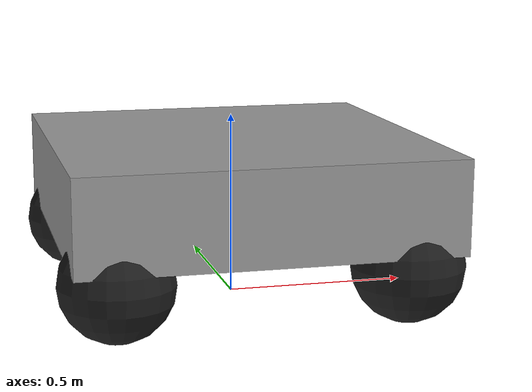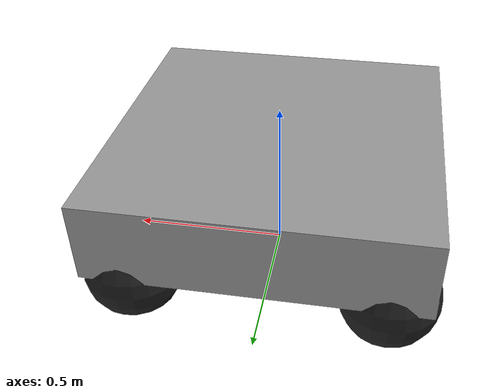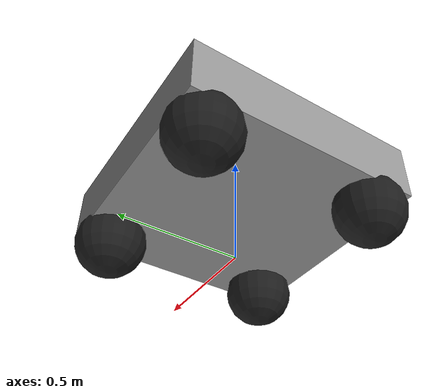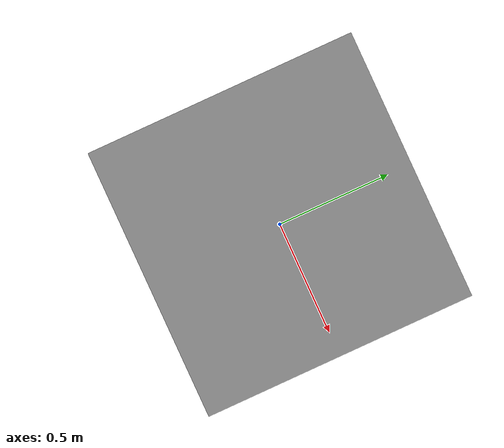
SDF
<?xml version='1.0' encoding='utf-8'?>
<sdf version="1.9">
  <model name="robot" canonical_link="base_link">
    <pose>0 0 0.32 0 0 0</pose>
    <link name="base_link">
      <gravity>false</gravity>
      <inertial>
        <mass>5</mass>
        <inertia>
          <ixx>0.442708</ixx>
          <iyy>0.442708</iyy>
          <izz>0.833333</izz>
        </inertia>
      </inertial>
      <collision name="body_collision">
        <geometry>
          <box>
            <size>1.0 1.0 0.25</size>
          </box>
        </geometry>
      </collision>
      <visual name="body_visual">
        <geometry>
          <box>
            <size>1.0 1.0 0.25</size>
          </box>
        </geometry>
        <material>
          <ambient>0.45 0.45 0.45 1</ambient>
          <diffuse>0.60 0.60 0.60 1</diffuse>
          <specular>0.25 0.25 0.25 1</specular>
        </material>
      </visual>
      <collision name="support_0_collision">
        <pose>0.38 0.38 -0.17 0 0 0</pose>
        <geometry>
          <sphere>
            <radius>0.15</radius>
          </sphere>
        </geometry>
        <surface>
          <friction>
            <ode>
              <mu>0.02</mu>
              <mu2>0.02</mu2>
            </ode>
          </friction>
        </surface>
      </collision>
      <visual name="support_0_visual">
        <pose>0.38 0.38 -0.17 0 0 0</pose>
        <geometry>
          <sphere>
            <radius>0.15</radius>
          </sphere>
        </geometry>
        <material>
          <ambient>0.12 0.12 0.12 1</ambient>
          <diffuse>0.12 0.12 0.12 1</diffuse>
        </material>
      </visual>
      <collision name="support_1_collision">
        <pose>0.38 -0.38 -0.17 0 0 0</pose>
        <geometry>
          <sphere>
            <radius>0.15</radius>
          </sphere>
        </geometry>
        <surface>
          <friction>
            <ode>
              <mu>0.02</mu>
              <mu2>0.02</mu2>
            </ode>
          </friction>
        </surface>
      </collision>
      <visual name="support_1_visual">
        <pose>0.38 -0.38 -0.17 0 0 0</pose>
        <geometry>
          <sphere>
            <radius>0.15</radius>
          </sphere>
        </geometry>
        <material>
          <ambient>0.12 0.12 0.12 1</ambient>
          <diffuse>0.12 0.12 0.12 1</diffuse>
        </material>
      </visual>
      <collision name="support_2_collision">
        <pose>-0.38 0.38 -0.17 0 0 0</pose>
        <geometry>
          <sphere>
            <radius>0.15</radius>
          </sphere>
        </geometry>
        <surface>
          <friction>
            <ode>
              <mu>0.02</mu>
              <mu2>0.02</mu2>
            </ode>
          </friction>
        </surface>
      </collision>
      <visual name="support_2_visual">
        <pose>-0.38 0.38 -0.17 0 0 0</pose>
        <geometry>
          <sphere>
            <radius>0.15</radius>
          </sphere>
        </geometry>
        <material>
          <ambient>0.12 0.12 0.12 1</ambient>
          <diffuse>0.12 0.12 0.12 1</diffuse>
        </material>
      </visual>
      <collision name="support_3_collision">
        <pose>-0.38 -0.38 -0.17 0 0 0</pose>
        <geometry>
          <sphere>
            <radius>0.15</radius>
          </sphere>
        </geometry>
        <surface>
          <friction>
            <ode>
              <mu>0.02</mu>
              <mu2>0.02</mu2>
            </ode>
          </friction>
        </surface>
      </collision>
      <visual name="support_3_visual">
        <pose>-0.38 -0.38 -0.17 0 0 0</pose>
        <geometry>
          <sphere>
            <radius>0.15</radius>
          </sphere>
        </geometry>
        <material>
          <ambient>0.12 0.12 0.12 1</ambient>
          <diffuse>0.12 0.12 0.12 1</diffuse>
        </material>
      </visual>
      <sensor name="lidar" type="gpu_lidar">
        <pose>0 0 0.30 0 0 0</pose>
        <topic>/scan</topic>
        <update_rate>5</update_rate>
        <ray>
          <scan>
            <horizontal>
              <samples>720</samples>
              <resolution>1</resolution>
              <min_angle>-3.14159265</min_angle>
              <max_angle>3.14159265</max_angle>
            </horizontal>
            <vertical>
              <samples>16</samples>
              <resolution>1</resolution>
              <min_angle>-0.34906585</min_angle>
              <max_angle>0.34906585</max_angle>
            </vertical>
          </scan>
          <range>
            <min>0.10</min>
            <max>50.0</max>
            <resolution>0.01</resolution>
          </range>
        </ray>
        <always_on>true</always_on>
        <visualize>true</visualize>
      </sensor>
    </link>
    <plugin filename="s1_terrain_drive" name="s1::TerrainDrive">
      <heightmap_uri>usgs_utah_heightmap.png</heightmap_uri>
      <terrain_size>2000</terrain_size>
      <height_range>73.177490234</height_range>
      <terrain_z_offset>-18.115600586</terrain_z_offset>
      <max_slope_deg>30</max_slope_deg>
    </plugin>
    <plugin filename="gz-sim-odometry-publisher-system" name="gz::sim::systems::OdometryPublisher">
      <odom_frame>odom</odom_frame>
      <robot_base_frame>base_link</robot_base_frame>
      <odom_publish_frequency>30</odom_publish_frequency>
      <odom_topic>/model/robot/odometry</odom_topic>
      <dimensions>3</dimensions>
    </plugin>
  </model>
</sdf>
